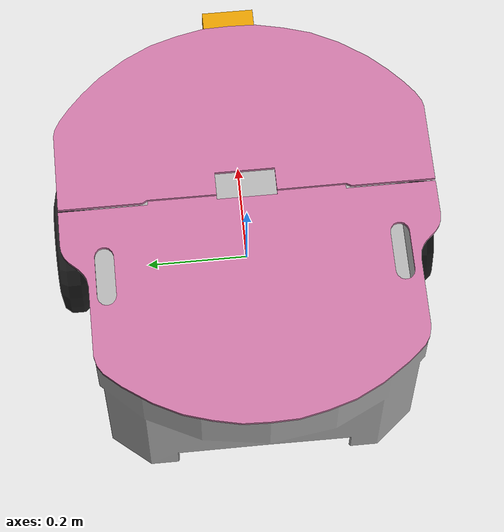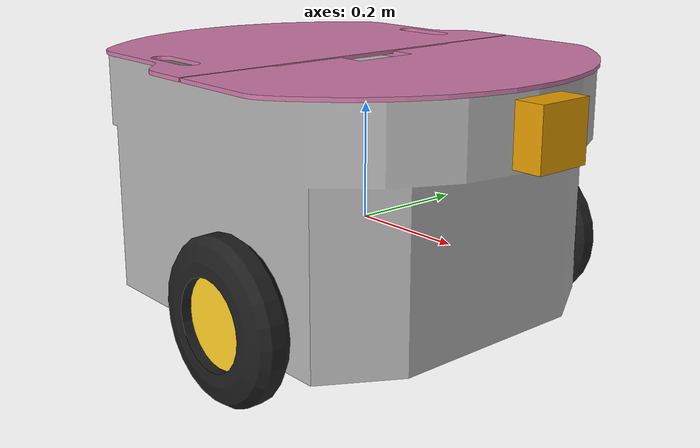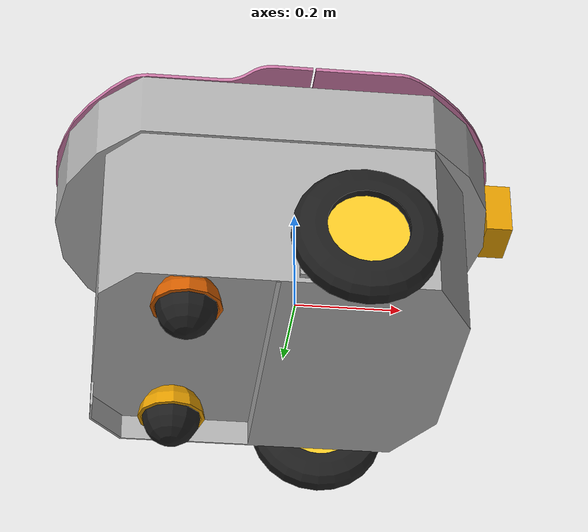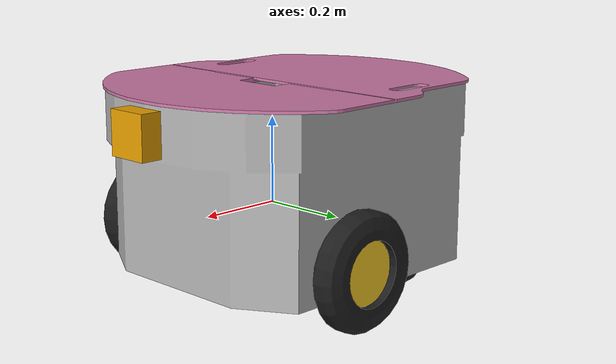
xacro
<?xml version="1.0"?>

<robot name="powerbot"
	xmlns:sensor="http://playerstage.sourceforge.net/gazebo/xmlschema/#sensor"
	xmlns:controller="http://playerstage.sourceforge.net/gazebo/xmlschema/#controller"
	xmlns:interface="http://playerstage.sourceforge.net/gazebo/xmlschema/#interface"
	xmlns:xacro="http://ros.org/wiki/xacro">

  <!-- Include powerbot wheels -->
  <xacro:include filename="$(find technical_project)/urdf/powerbot/powerbot_wheel.xacro"/>
  <!-- Include powerbot swivel wheels -->
  <xacro:include filename="$(find technical_project)/urdf/powerbot/powerbot_swivel_wheel.xacro"/>
  <!-- Include powerbot swivel balls -->
  <xacro:include filename="$(find technical_project)/urdf/powerbot/powerbot_swivel_ball.xacro"/>
  <!-- where to find all meshes -->
  <xacro:property name="mesh_directory" value="package://technical_project/meshes/p3dx_meshes"/>

  <!--bcz = base_center z value -->
  <xacro:property name="bcz" value="0.067"/>

 <xacro:powerbot_swivel_ball suffix="left" parent="base_center" reflect="1"/>
  <xacro:powerbot_swivel_ball suffix="right" parent="base_center" reflect="-1"/>

  <xacro:powerbot_wheel suffix="left" parent="base_center" reflect="1"/>
  <xacro:powerbot_wheel suffix="right" parent="base_center" reflect="-1"/>

<!-- Top -->
	<joint name="base_top_joint" type="fixed">
		<!--origin xyz="-0.045 0 0.325" rpy="0 0 0"/-->
		<origin xyz="-0.045 0 0.277" rpy="0 0 0"/>
		<parent link="base_center"/>
		<child link="top_plate"/>
	</joint>

<!-- Top plate -->
	<link name="top_plate">
		<inertial>
			<mass value="0.1"/>
			<origin xyz="0 0 0"/>
			<inertia ixx="1" ixy="0" ixz="0"
				 iyy="1" iyz="0"
 				izz="1"/>
		</inertial>
		<visual>
			<origin xyz="0 0 0" rpy="0 0 0"/>
			<geometry name="top_geom">
				<mesh filename="${mesh_directory}/top.stl"/>
			</geometry>
		</visual>
		<collision>
			<origin xyz="0 0 0" rpy="0 0 0"/>
			<geometry>
				<mesh filename="${mesh_directory}/top.stl" />
			</geometry>
		</collision>
	</link>
	<gazebo reference="top_plate">
		<material value="Gazebo/Black"/>
	</gazebo>

<!-- Chassis -->
<link name="base_center">
	<inertial>
	  <mass value="1200.0"/>
	  <origin xyz="-0.045 0 ${bcz}"/>
	  <inertia ixx="1" ixy="0.0"    ixz="0.0"
		   		iyy="1" iyz="0.0"
	          			     izz="1"/>
	</inertial>
		<visual>
			<origin xyz="-0.045 0 ${bcz}" rpy="0 0 0"/>
			<geometry name="pioneer_geom">
				<mesh filename="${mesh_directory}/chassis.stl"/>
			</geometry>
		</visual>

		<collision>
			<origin xyz="-0.045 0 ${bcz}" rpy="0 0 0"/>
			<geometry>
				<mesh filename="${mesh_directory}/chassis.stl" scale="1.01 1.01 1.01"/>
			</geometry>
		</collision>
	</link>
	<gazebo reference="base_center">
		 	<material value="Gazebo/Yellow"/>
	</gazebo>

  <link name="sensor_link">

    <visual>
      <geometry>
        <box size="0.05 0.1 0.1"/>
      </geometry>
    </visual>

    <inertial>
      <origin xyz="0 0 1" rpy="0 0 0"/>
      <mass value="0.5"/>
      <inertia
        ixx="1.0" ixy="0.0" ixz="0.0"
        iyy="1.0" iyz="0.0"
        izz="1.0"/>
    </inertial>

  </link>

  <gazebo reference="sensor_link">
		<material value="Gazebo/Blue"/>
	</gazebo>

	<joint name="sensor_joint" type="fixed">
		<parent link="base_center" />
		<child link="sensor_link" />
		<origin xyz="0.39 0 0.215" rpy="0 0 0"/>
	</joint>

    <gazebo reference="base_center">
        <sensor type="ray" name="laser">
        <pose>0.39 0 0.215 0 0 0</pose>
        <visualize>true</visualize>
        <update_rate>40</update_rate>
        <ray>
          <scan>
            <horizontal>
              <samples>720</samples>
              <resolution>1</resolution>
              <min_angle>-1.57</min_angle>
              <max_angle>1.57</max_angle>
            </horizontal>
          </scan>
          <range>
            <min>0.1</min>
            <max>30.0</max>
            <resolution>0.01</resolution>
          </range>
          <noise>
            <type>gaussian</type>

            <mean>0.0</mean>
            <stddev>0.01</stddev>
          </noise>
        </ray>
        <plugin name="gazebo_ros_head_hokuyo_controller" filename="libgazebo_ros_laser.so">
          <topicName>/laser/scan</topicName>
          <frameName>base_center</frameName>
        </plugin>
      </sensor>
    </gazebo>

      <gazebo reference="sensor_link">
    <sensor type="camera" name="camera">
      <update_rate>30.0</update_rate>
      <camera name="head">
        <horizontal_fov>1.3962634</horizontal_fov>
        <image>
          <width>640</width>
          <height>480</height>
          <format>R8G8B8</format>
        </image>
        <clip>
          <near>0.02</near>
          <far>300</far>
        </clip>
        <noise>
          <type>gaussian</type>
          <!-- Noise is sampled independently per pixel on each frame.
               That pixel's noise value is added to each of its color
               channels, which at that point lie in the range [0,1]. -->
          <mean>0.0</mean>
          <stddev>0.007</stddev>
        </noise>
      </camera>
      <plugin name="camera_plugin" filename="libgazebo_ros_camera.so">
        <alwaysOn>true</alwaysOn>
        <updateRate>0.0</updateRate>
        <cameraName>camera</cameraName>
        <imageTopicName>image_raw</imageTopicName>
        <cameraInfoTopicName>camera_info</cameraInfoTopicName>
        <frameName>sensor_link</frameName>
        <hackBaseline>0.07</hackBaseline>
        <distortionK1>0.0</distortionK1>
        <distortionK2>0.0</distortionK2>
        <distortionK3>0.0</distortionK3>
        <distortionT1>0.0</distortionT1>
        <distortionT2>0.0</distortionT2>
      </plugin>
    </sensor>
  </gazebo>

  <!--IMU-->
  <gazebo>
    <plugin name="imu_plugin" filename="libgazebo_ros_imu.so">
      <alwaysOn>true</alwaysOn>
      <bodyName>base_center</bodyName>
      <topicName>imu</topicName>
      <serviceName>imu_service</serviceName>
      <gaussianNoise>0.0</gaussianNoise>
      <updateRate>150.0</updateRate>
    </plugin>
  </gazebo>

<gazebo>
<plugin name="gazebo_ros_control" filename="libgazebo_ros_control.so">
</plugin>
</gazebo>

</robot>

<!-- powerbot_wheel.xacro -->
<robot xmlns:xacro="http://ros.org/wiki/xacro">

  <!-- Properties (Constants) -->
  <xacro:property name="M_PI" value="3.14159"/>
  <!-- where to find all meshes -->
<xacro:property name="mesh_directory" value="package://technical_project/meshes/p3dx_meshes"/>

  <!-- Right/Left Hubcap + Wheel -->
  <xacro:macro name="powerbot_wheel" params="suffix parent reflect">
    <link name="powerbot_${suffix}_wheel">
      <inertial>
	<mass value="5.25"/>
		<origin xyz="0 0 0"/>
		<inertia ixx="0.012411765597" ixy="0" ixz="0"
		         iyy="0.015218160428" iyz="0" izz="0.011763977943"/>
	      </inertial>
		<visual>
			<origin xyz="0 0 0" rpy="0 0 0"/>
			<geometry>
				<mesh filename="${mesh_directory}/wheel.stl" />
			</geometry>
			<material name="WheelBlack">
				<color rgba="0.117 0.117 0.117 1"/>
			</material>
		</visual>
	<collision>
		<origin xyz="0 0 0" rpy="${-3.1415927/2} 0 0"/>
		<geometry>
		  <cylinder radius="0.133" length="0.065"/>
		</geometry>
	</collision>
    </link>

    <joint name="base_${suffix}_hubcap_joint" type="fixed">
      <origin xyz="0 0 0" rpy="0 0 0"/>

      <parent link="powerbot_${suffix}_wheel"/>
      <child link="powerbot_${suffix}_hubcap"/>
    </joint>

    <link name="powerbot_${suffix}_hubcap">
	      <inertial>
		<mass value="0.08"/>
		<origin xyz="0 0 0"/>
		<inertia ixx="0.012411765597" ixy="0" ixz="0"
		         iyy="0.015218160428" iyz="0" izz="0.011763977943"/>
	      </inertial>
		<visual>
			<origin xyz="0 0 0" rpy="0 0 0"/>
			<geometry>
				<mesh filename="${mesh_directory}/hubcap.stl"/>
			</geometry>
        <material name="HubcapYellow">
          <color rgba="1.0 0.811 0.151 1.0"/>
        </material>
      </visual>
    </link>

    <!-- The transmission tag is used only by ros_control -->

    <joint name="base_${suffix}_wheel_joint" type="continuous">
      <axis xyz="0 1 0"/>
      <anchor xyz="0 0 0"/>
      <limit effort="100" velocity="100" />
      <joint_properties damping="0.0" friction="0.0" />
      <origin xyz="0.084 ${reflect*0.35} -0.07" rpy="0 0 0"/>
      <parent link="base_center"/>
      <child link="powerbot_${suffix}_wheel"/>
    </joint>

    <transmission name="${suffix}_wheel_trans">
      <type>transmission_interface/SimpleTransmission</type>
      <joint name="base_${suffix}_wheel_joint">
      <hardwareInterface>hardware_interface/VelocityJointInterface</hardwareInterface>
      </joint>
      <actuator name="base_${suffix}_wheel_motor">
        <hardwareInterface>hardware_interface/VelocityJointInterface</hardwareInterface>
        <mechanicalReduction>${reflect * 624/35 * 80/19}</mechanicalReduction>
      </actuator>
	  </transmission>

    <gazebo reference="powerbot_${suffix}_hubcap">
      <material value="Gazebo/Yellow"/>
    </gazebo>

    <gazebo reference="powerbot_${suffix}_wheel">
      <material value="Gazebo/Black"/>
      <mu1>0.5</mu1>
      <mu2>50.0</mu2>
      <kp>100000000.0</kp>
      <kd>1.0</kd>
    </gazebo>

  </xacro:macro>

</robot>

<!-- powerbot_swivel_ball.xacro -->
<robot xmlns:xacro="http://ros.org/wiki/xacro">

  <!-- Properties (Constants) -->
  <xacro:property name="M_PI" value="3.14159"/>
  <!-- where to find all meshes -->
<xacro:property name="mesh_directory" value="package://champ_description/meshes/p3dx_meshes"/>

  <!-- Right/${suffix} Swivel + Hubcap + Wheel -->
  <xacro:macro name="powerbot_swivel_ball" params="suffix parent reflect">

	<joint name="${suffix}_base_swivel_support_joint" type="fixed">
		<origin xyz="-0.215 ${reflect*0.2} -0.145" rpy="0 0 0"/>
		<parent link="${parent}"/>
		<child link="powerbot_${suffix}_swivel_support"/>
	</joint>

<!-- Support bowl-->
    <link name="powerbot_${suffix}_swivel_support">
		<inertial>
			<mass value="2.0"/>
			<origin xyz="0 0 0" rpy="0 0 0"/>
			<inertia ixx="0.001" ixy="0" ixz="0"
				 iyy="0.001" iyz="0" izz="0.001"/>
  	 	</inertial>
	<visual>
		<origin xyz="0 0 0" rpy="0 0 0"/>
		<geometry name="swivel">
			<mesh filename="${mesh_directory}/bowl.stl" />
		</geometry>
	</visual>
	<collision>
		<origin xyz="0 0 0" rpy="0 0 0"/>
		<geometry>
			<mesh filename="${mesh_directory}/bowl.stl" scale= "1.005 1.005 1.005"/>
		</geometry>
	</collision>
	</link>
	<gazebo reference="powerbot_${suffix}_swivel_support">
		<material value="Gazebo/Yellow"/>
	</gazebo>

<!-- ${suffix} support swivel ball joint -->

<joint name="${suffix}_ballRoot_joint" type="fixed" >
    <origin xyz="0 0 0" />
    <parent link="powerbot_${suffix}_swivel_support" />
    <child link="${suffix}_ball" />
</joint>

<link name="${suffix}_ball" >
<inertial>
	<mass value="2.0"/>
	<origin xyz="0 0 0"/>
	<inertia ixx="0.00288" ixy="0.0" ixz="0.0"
		 iyy="0.00288" iyz="0.0" izz="0.00288"/>
</inertial>
  </link>

<joint name="${suffix}_ballPsi_joint" type="continuous" >
    <origin xyz="0 0 0" rpy="0 0 0"/>
    <parent link="${suffix}_ball" />
    <child link="${suffix}_ball_psi_link" />
    <axis xyz="0 0 1" />
    <dynamics damping="0.09" />
</joint>

<link name="${suffix}_ball_psi_link" >
<inertial>
	<mass value="2.0"/>
	<origin xyz="0 0 0"/>
	<inertia ixx="0.00288" ixy="0.0" ixz="0.0"
		 iyy="0.00288" iyz="0.0" izz="0.00288"/>
</inertial>
  </link>

<joint name="${suffix}_ballTheta_joint" type="continuous" >
    <origin xyz="0 0 0" rpy="0 0 0"/>
    <parent link="${suffix}_ball_psi_link"/>
    <child link="${suffix}_ball_theta_link"/>
    <axis xyz="0 1 0" />
    <dynamics damping="0.09" />
</joint>

<link name="${suffix}_ball_theta_link" >
	<inertial>
		<mass value="2.0"/>
		<origin xyz="0 0 0"/>
		<inertia ixx="0.00288" ixy="0.0" ixz="0.0"
			 iyy="0.00288" iyz="0.0" izz="0.00288"/>
	</inertial>
  </link>

<joint name="${suffix}_ballPhi_joint" type="continuous" >
    <origin xyz="0 0 0" rpy="0 0 0"/>
    <parent link="${suffix}_ball_theta_link"/>
    <child link="powerbot_${suffix}_swivel_ball"/>
    <axis xyz="1 0 0" />
    <dynamics damping="0.09" />
</joint>
 <!-- Swivel ball -->
<link name="powerbot_${suffix}_swivel_ball">
	<inertial>
			<mass value="2.0"/>
			<origin xyz="0 0 0"/>
			<inertia ixx="0.00288" ixy="0.0" ixz="0.0"
				 iyy="0.00288" iyz="0.0" izz="0.00288"/>
  	 	</inertial>
	<visual>
		<origin xyz="0 0 0" rpy="0 0 0"/>
		<geometry name="powerbot_${suffix}_swivel_ball">
			<mesh filename="${mesh_directory}/ball.stl" />
		</geometry>
		<material name="Whee${suffix}_black">
			<color rgba="0.117 0.117 0.117 1"/>
		</material>
	</visual>
	<collision>
		<origin xyz="0 0 0" rpy=" ${-3.1415927/2} 0 0"/>
		<geometry>
			<sphere radius="0.06"/>
		</geometry>
	</collision>
  </link>

    <gazebo reference="powerbot_${suffix}_swivel_ball">
      <material value="Gazebo/Black"/>
      <mu1>100</mu1>
      <mu2>200</mu2>
      <kp>100000000.0</kp>
      <kd>1.0</kd>
    </gazebo>

  </xacro:macro>

</robot>
